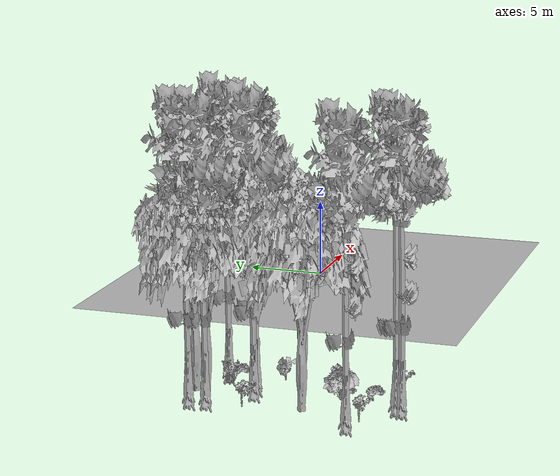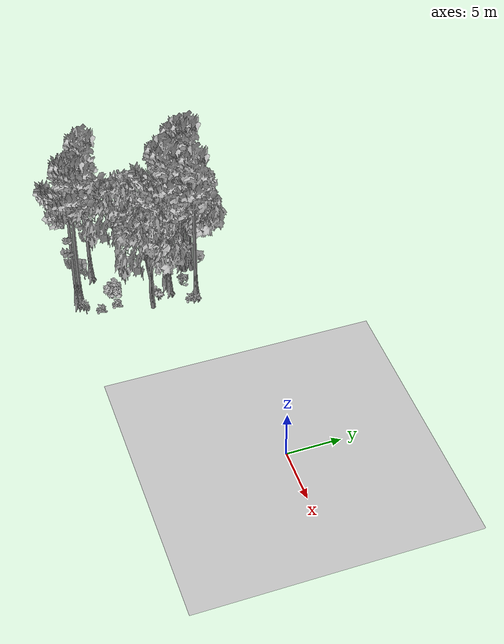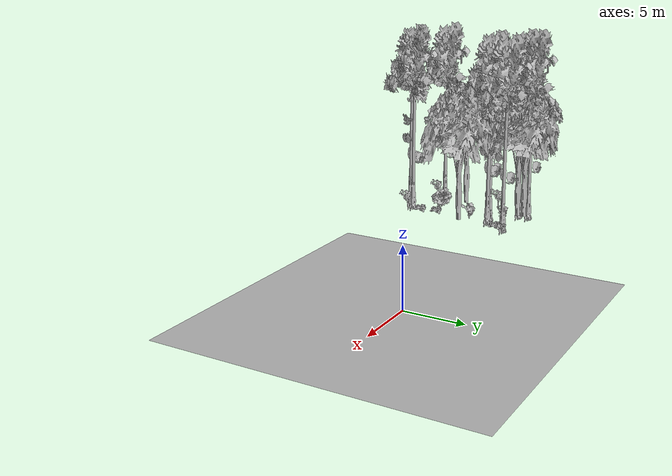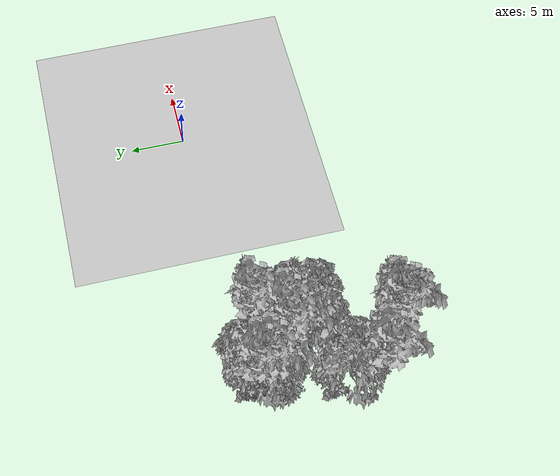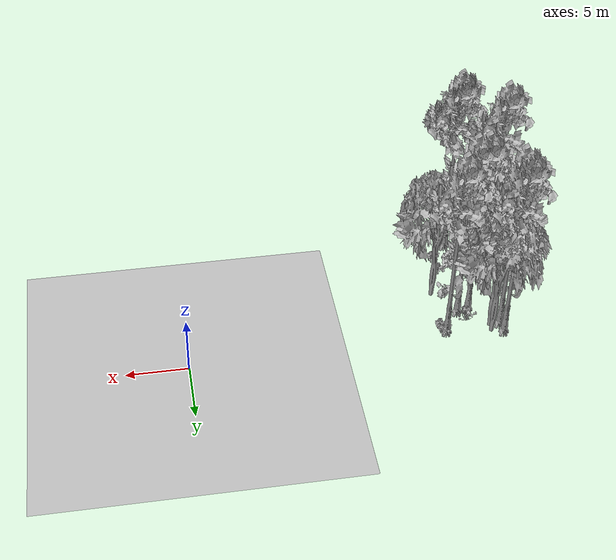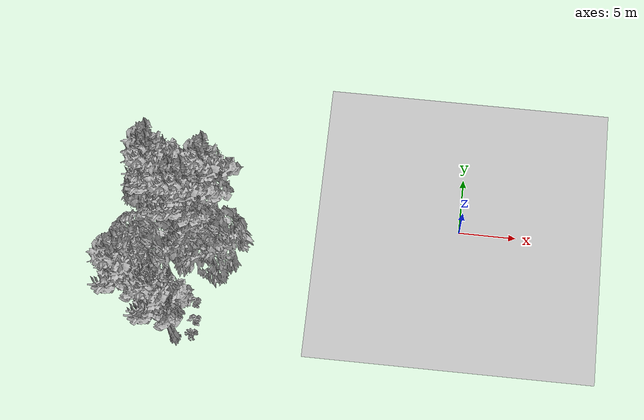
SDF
<sdf version="1.7">
 <world name="default">
  <model name="ground_plane">
   <static>1</static>
   <link name="link">
    <collision name="collision">
     <pose>-50 0 0 0 -0 0</pose>
     <geometry><plane><normal>0 0 1</normal><size>80 80</size></plane></geometry>
     <surface><contact><ode><min_depth>0.01</min_depth><max_vel>0</max_vel></ode></contact></surface>
    </collision>
    <visual name="grass">
     <cast_shadows>0</cast_shadows>
     <geometry>
      <mesh>
       <scale>0.46714285714285714 0.46714285714285714 0.1</scale>
       <uri>file://grass_plane/meshes/grass_plane.dae</uri>
      </mesh>
     </geometry>
    </visual>
   </link>
  </model>
  <model name="Tree 76">
   <static>1</static>
   <pose>-25.634454811040225 -1.6060521768841056 0 1.57079 -0 0</pose>
   <link name="link">
    <collision name="collision">
     <geometry><mesh><scale>3.5 5 3.5</scale><uri>model://tree_9/meshes/tree_9.obj</uri></mesh></geometry>
    </collision>
    <visual name="visual">
     <geometry><mesh><scale>3.5 5 3.5</scale><uri>model://tree_9/meshes/tree_9.obj</uri></mesh></geometry>
    </visual>
   </link>
  </model>
  <model name="Tree 180">
   <static>1</static>
   <pose>-21.122403048671007 -1.3015440787890356 0 1.57079 -0 0</pose>
   <link name="link">
    <collision name="collision">
     <geometry><mesh><scale>3.5 5 3.5</scale><uri>model://tree_9/meshes/tree_9.obj</uri></mesh></geometry>
    </collision>
    <visual name="visual">
     <geometry><mesh><scale>3.5 5 3.5</scale><uri>model://tree_9/meshes/tree_9.obj</uri></mesh></geometry>
    </visual>
   </link>
  </model>
  <model name="Tree 197">
   <static>1</static>
   <pose>-26.152838698582663 -7.335515790301088 0 1.57079 -0 0</pose>
   <link name="link">
    <collision name="collision">
     <geometry><mesh><scale>3.5 5 3.5</scale><uri>model://tree_2/meshes/tree_2.obj</uri></mesh></geometry>
    </collision>
    <visual name="visual">
     <geometry><mesh><scale>3.5 5 3.5</scale><uri>model://tree_2/meshes/tree_2.obj</uri></mesh></geometry>
    </visual>
   </link>
  </model>
  <model name="Tree 216">
   <static>1</static>
   <pose>-23.55663266235039 -11.889235242897456 0 1.57079 -0 0</pose>
   <link name="link">
    <collision name="collision">
     <geometry><mesh><scale>3.5 5 3.5</scale><uri>model://tree_9/meshes/tree_9.obj</uri></mesh></geometry>
    </collision>
    <visual name="visual">
     <geometry><mesh><scale>3.5 5 3.5</scale><uri>model://tree_9/meshes/tree_9.obj</uri></mesh></geometry>
    </visual>
   </link>
  </model>
  <model name="Tree 339">
   <static>1</static>
   <pose>-24.760076509550096 -0.7070615869634693 0 1.57079 -0 0</pose>
   <link name="link">
    <collision name="collision">
     <geometry><mesh><scale>3.5 5 3.5</scale><uri>model://tree_2/meshes/tree_2.obj</uri></mesh></geometry>
    </collision>
    <visual name="visual">
     <geometry><mesh><scale>3.5 5 3.5</scale><uri>model://tree_2/meshes/tree_2.obj</uri></mesh></geometry>
    </visual>
   </link>
  </model>
  <model name="Tree 413">
   <static>1</static>
   <pose>-23.69880237316883 -12.238338543733391 0 1.57079 -0 0</pose>
   <link name="link">
    <collision name="collision">
     <geometry><mesh><scale>3.5 5 3.5</scale><uri>model://tree_9/meshes/tree_9.obj</uri></mesh></geometry>
    </collision>
    <visual name="visual">
     <geometry><mesh><scale>3.5 5 3.5</scale><uri>model://tree_9/meshes/tree_9.obj</uri></mesh></geometry>
    </visual>
   </link>
  </model>
  <model name="Tree 420">
   <static>1</static>
   <pose>-20.93224684147421 -5.653349440527045 0 1.57079 -0 0</pose>
   <link name="link">
    <collision name="collision">
     <geometry><mesh><scale>3.5 5 3.5</scale><uri>model://tree_2/meshes/tree_2.obj</uri></mesh></geometry>
    </collision>
    <visual name="visual">
     <geometry><mesh><scale>3.5 5 3.5</scale><uri>model://tree_2/meshes/tree_2.obj</uri></mesh></geometry>
    </visual>
   </link>
  </model>
  <model name="Tree 427">
   <static>1</static>
   <pose>-26.897857110875393 -10.061774384833644 0 1.57079 -0 0</pose>
   <link name="link">
    <collision name="collision">
     <geometry><mesh><scale>3.5 5 3.5</scale><uri>model://tree_9/meshes/tree_9.obj</uri></mesh></geometry>
    </collision>
    <visual name="visual">
     <geometry><mesh><scale>3.5 5 3.5</scale><uri>model://tree_9/meshes/tree_9.obj</uri></mesh></geometry>
    </visual>
   </link>
  </model>
  <model name="Tree 462">
   <static>1</static>
   <pose>-25.73308166469004 -0.6509458187452211 0 1.57079 -0 0</pose>
   <link name="link">
    <collision name="collision">
     <geometry><mesh><scale>3.5 5 3.5</scale><uri>model://tree_9/meshes/tree_9.obj</uri></mesh></geometry>
    </collision>
    <visual name="visual">
     <geometry><mesh><scale>3.5 5 3.5</scale><uri>model://tree_9/meshes/tree_9.obj</uri></mesh></geometry>
    </visual>
   </link>
  </model>
  <model name="Tree 482">
   <static>1</static>
   <pose>-24.780384189690988 -1.3474444140327222 0 1.57079 -0 0</pose>
   <link name="link">
    <collision name="collision">
     <geometry><mesh><scale>3.5 5 3.5</scale><uri>model://tree_2/meshes/tree_2.obj</uri></mesh></geometry>
    </collision>
    <visual name="visual">
     <geometry><mesh><scale>3.5 5 3.5</scale><uri>model://tree_2/meshes/tree_2.obj</uri></mesh></geometry>
    </visual>
   </link>
  </model>
  <model name="Tree 599">
   <static>1</static>
   <pose>-22.54869072453999 -3.4753246032005265 0 1.57079 -0 0</pose>
   <link name="link">
    <collision name="collision">
     <geometry><mesh><scale>3.5 5 3.5</scale><uri>model://tree_9/meshes/tree_9.obj</uri></mesh></geometry>
    </collision>
    <visual name="visual">
     <geometry><mesh><scale>3.5 5 3.5</scale><uri>model://tree_9/meshes/tree_9.obj</uri></mesh></geometry>
    </visual>
   </link>
  </model>
  <model name="Tree 631">
   <static>1</static>
   <pose>-23.4883184308103 -3.658377554231379 0 1.57079 -0 0</pose>
   <link name="link">
    <collision name="collision">
     <geometry><mesh><scale>3.5 5 3.5</scale><uri>model://tree_9/meshes/tree_9.obj</uri></mesh></geometry>
    </collision>
    <visual name="visual">
     <geometry><mesh><scale>3.5 5 3.5</scale><uri>model://tree_9/meshes/tree_9.obj</uri></mesh></geometry>
    </visual>
   </link>
  </model>
  <model name="Bush 30">
   <static>1</static>
   <pose>-22.0745051236389 -11.742189591975134 0 1.57079 -0 0</pose>
   <link name="link">
    <collision name="collision">
     <geometry><mesh><scale>2 2 2</scale><uri>model://bush_5/meshes/bush_5.obj</uri></mesh></geometry>
     <surface><contact><collide_without_contact>false</collide_without_contact></contact></surface>
    </collision>
    <visual name="visual">
     <geometry><mesh><scale>2 2 2</scale><uri>model://bush_5/meshes/bush_5.obj</uri></mesh></geometry>
    </visual>
   </link>
  </model>
  <model name="Bush 247">
   <static>1</static>
   <pose>-22.94839808806994 -2.1306766885675117 0 1.57079 -0 0</pose>
   <link name="link">
    <collision name="collision">
     <geometry><mesh><scale>2 2 2</scale><uri>model://bush_4/meshes/bush_4.obj</uri></mesh></geometry>
     <surface><contact><collide_without_contact>false</collide_without_contact></contact></surface>
    </collision>
    <visual name="visual">
     <geometry><mesh><scale>2 2 2</scale><uri>model://bush_4/meshes/bush_4.obj</uri></mesh></geometry>
    </visual>
   </link>
  </model>
  <model name="Bush 261">
   <static>1</static>
   <pose>-21.571082720557772 -4.882087935560513 0 1.57079 -0 0</pose>
   <link name="link">
    <collision name="collision">
     <geometry><mesh><scale>2 2 2</scale><uri>model://bush_0/meshes/bush_0.obj</uri></mesh></geometry>
     <surface><contact><collide_without_contact>false</collide_without_contact></contact></surface>
    </collision>
    <visual name="visual">
     <geometry><mesh><scale>2 2 2</scale><uri>model://bush_0/meshes/bush_0.obj</uri></mesh></geometry>
    </visual>
   </link>
  </model>
  <model name="Bush 366">
   <static>1</static>
   <pose>-26.722969293351476 -10.744328212693112 0 1.57079 -0 0</pose>
   <link name="link">
    <collision name="collision">
     <geometry><mesh><scale>2 2 2</scale><uri>model://bush_5/meshes/bush_5.obj</uri></mesh></geometry>
     <surface><contact><collide_without_contact>false</collide_without_contact></contact></surface>
    </collision>
    <visual name="visual">
     <geometry><mesh><scale>2 2 2</scale><uri>model://bush_5/meshes/bush_5.obj</uri></mesh></geometry>
    </visual>
   </link>
  </model>
  <model name="Bush 393">
   <static>1</static>
   <pose>-23.75658720378187 -8.822323264568695 0 1.57079 -0 0</pose>
   <link name="link">
    <collision name="collision">
     <geometry><mesh><scale>2 2 2</scale><uri>model://bush_1/meshes/bush_1.obj</uri></mesh></geometry>
     <surface><contact><collide_without_contact>false</collide_without_contact></contact></surface>
    </collision>
    <visual name="visual">
     <geometry><mesh><scale>2 2 2</scale><uri>model://bush_1/meshes/bush_1.obj</uri></mesh></geometry>
    </visual>
   </link>
  </model>
  <model name="Bush 471">
   <static>1</static>
   <pose>-20.955587277521026 -1.4197256368051114 0 1.57079 -0 0</pose>
   <link name="link">
    <collision name="collision">
     <geometry><mesh><scale>2 2 2</scale><uri>model://bush_2/meshes/bush_2.obj</uri></mesh></geometry>
     <surface><contact><collide_without_contact>false</collide_without_contact></contact></surface>
    </collision>
    <visual name="visual">
     <geometry><mesh><scale>2 2 2</scale><uri>model://bush_2/meshes/bush_2.obj</uri></mesh></geometry>
    </visual>
   </link>
  </model>
  <model name="Bush 477">
   <static>1</static>
   <pose>-22.165851946529884 -10.336871373597898 0 1.57079 -0 0</pose>
   <link name="link">
    <collision name="collision">
     <geometry><mesh><scale>2 2 2</scale><uri>model://bush_2/meshes/bush_2.obj</uri></mesh></geometry>
     <surface><contact><collide_without_contact>false</collide_without_contact></contact></surface>
    </collision>
    <visual name="visual">
     <geometry><mesh><scale>2 2 2</scale><uri>model://bush_2/meshes/bush_2.obj</uri></mesh></geometry>
    </visual>
   </link>
  </model>
  <model name="Bush 524">
   <static>1</static>
   <pose>-22.395453009953908 -8.75346051865182 0 1.57079 -0 0</pose>
   <link name="link">
    <collision name="collision">
     <geometry><mesh><scale>2 2 2</scale><uri>model://bush_2/meshes/bush_2.obj</uri></mesh></geometry>
     <surface><contact><collide_without_contact>false</collide_without_contact></contact></surface>
    </collision>
    <visual name="visual">
     <geometry><mesh><scale>2 2 2</scale><uri>model://bush_2/meshes/bush_2.obj</uri></mesh></geometry>
    </visual>
   </link>
  </model>
  <model name="Bush 554">
   <static>1</static>
   <pose>-26.435702470122887 -4.035260608693804 0 1.57079 -0 0</pose>
   <link name="link">
    <collision name="collision">
     <geometry><mesh><scale>2 2 2</scale><uri>model://bush_5/meshes/bush_5.obj</uri></mesh></geometry>
     <surface><contact><collide_without_contact>false</collide_without_contact></contact></surface>
    </collision>
    <visual name="visual">
     <geometry><mesh><scale>2 2 2</scale><uri>model://bush_5/meshes/bush_5.obj</uri></mesh></geometry>
    </visual>
   </link>
  </model>
  <model name="Bush 579">
   <static>1</static>
   <pose>-23.27804383283716 -8.921788511440898 0 1.57079 -0 0</pose>
   <link name="link">
    <collision name="collision">
     <geometry><mesh><scale>2 2 2</scale><uri>model://bush_1/meshes/bush_1.obj</uri></mesh></geometry>
     <surface><contact><collide_without_contact>false</collide_without_contact></contact></surface>
    </collision>
    <visual name="visual">
     <geometry><mesh><scale>2 2 2</scale><uri>model://bush_1/meshes/bush_1.obj</uri></mesh></geometry>
    </visual>
   </link>
  </model>
  <model name="Bush 604">
   <static>1</static>
   <pose>-20.870115294929754 -1.9698469794150881 0 1.57079 -0 0</pose>
   <link name="link">
    <collision name="collision">
     <geometry><mesh><scale>2 2 2</scale><uri>model://bush_2/meshes/bush_2.obj</uri></mesh></geometry>
     <surface><contact><collide_without_contact>false</collide_without_contact></contact></surface>
    </collision>
    <visual name="visual">
     <geometry><mesh><scale>2 2 2</scale><uri>model://bush_2/meshes/bush_2.obj</uri></mesh></geometry>
    </visual>
   </link>
  </model>
 </world>
</sdf>
